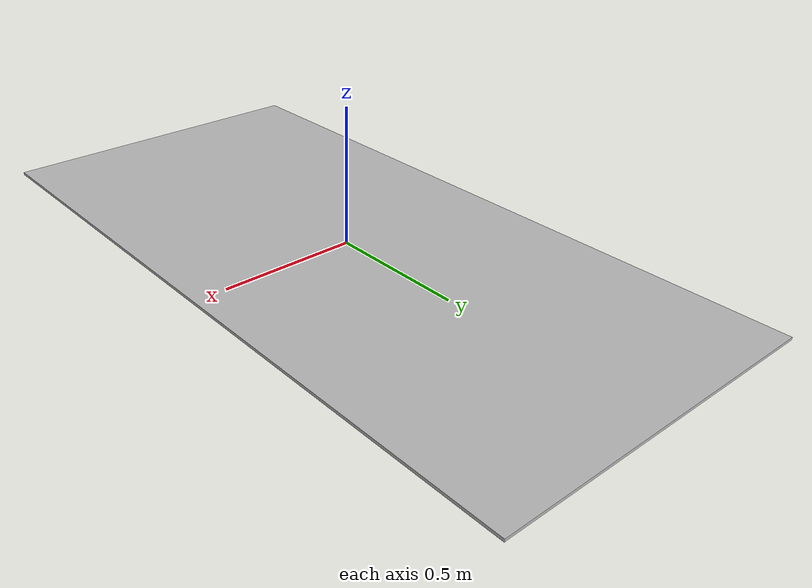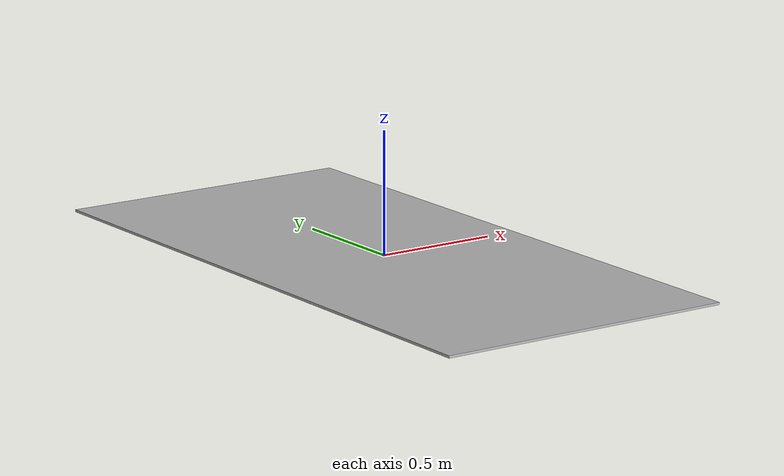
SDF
<?xml version="1.0" ?>
<sdf version="1.4">
  <model name="wall_plumbing">
    <static>true</static>
    <link name="link">
      <pose>0 0 0 0 0 0</pose>
      <visual name="visual">
        <cast_shadows>false</cast_shadows>
        <geometry>
          <box>
            <size>1.248 2.592 0.01</size>
          </box>
        </geometry>
        <material>
          <script>
            <uri>model://wall_plumbing/materials/scripts</uri>
            <uri>model://wall_plumbing/materials/textures</uri>
            <name>wall_plumbing</name>
          </script>
        </material>
      </visual>
    </link>
  </model>
</sdf>
